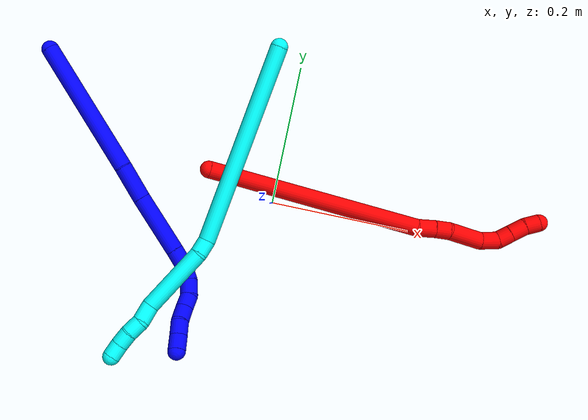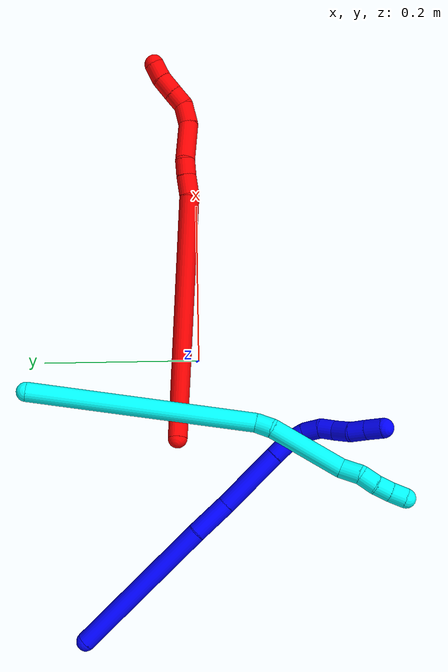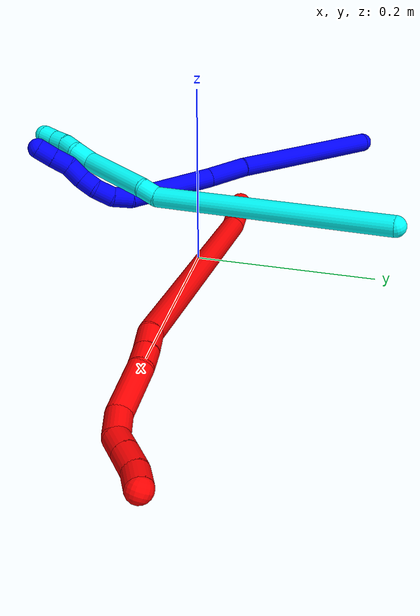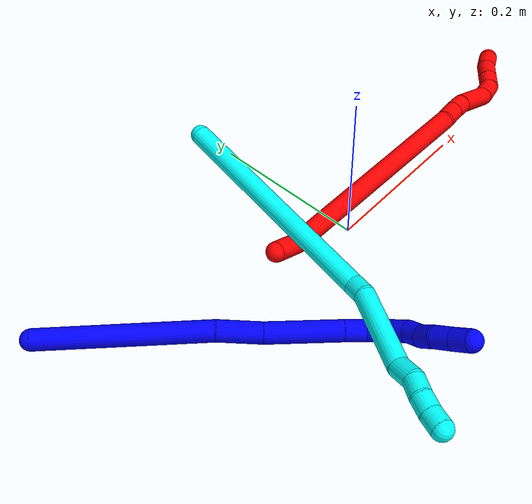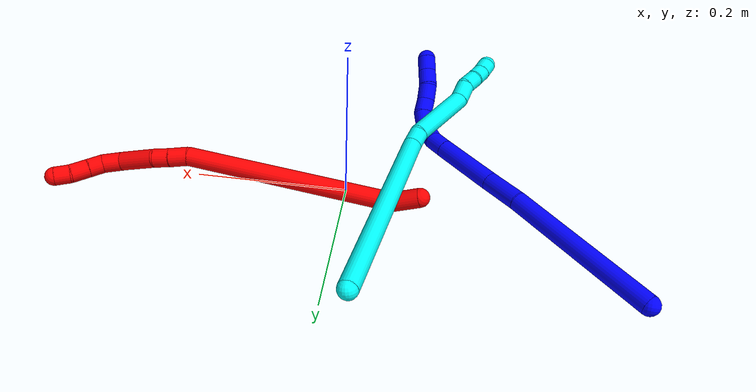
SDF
<sdf version="1.7">
 <world name="default">
  <plugin name="TubeGeneratorPlugin" filename="libtube_generator_plugin.so"/>
  <model name="photoneo_s_sensor">
   <static>1</static>
   <pose>0 0 2 1.57079 1.57079 3.14159</pose>
   <link name="link">
    <inertial><mass>0.1</mass></inertial>
    <sensor name="sensor" type="depth">
     <update_rate>30</update_rate>
     <camera>
      <horizontal_fov>1.22</horizontal_fov>
      <image><width>1920</width><height>1200</height><format>B8G8R8</format></image>
      <clip><near>0.1</near><far>4</far></clip>
      <depth_camera><output>points</output></depth_camera>
     </camera>
     <plugin name="camera_plugin" filename="libgazebo_ros_depth_camera.so">
      <baseline>0.2</baseline>
      <alwaysOn>1</alwaysOn>
      <updateRate>0.0</updateRate>
      <cameraName>camera_ir</cameraName>
      <imageTopicName>/camera/color/image_raw</imageTopicName>
      <cameraInfoTopicName>/camera/color/camera_info</cameraInfoTopicName>
      <depthImageTopicName>/camera/depth/image_raw</depthImageTopicName>
      <depthImageCameraInfoTopicName>/camera/depth/camera_info</depthImageCameraInfoTopicName>
      <pointCloudTopicName>/camera/depth/points</pointCloudTopicName>
      <frameName>fr_optical</frameName>
      <pointCloudCutoff>0.1</pointCloudCutoff>
      <pointCloudCutoffMax>2.0</pointCloudCutoffMax>
      <distortionK1>0</distortionK1>
      <distortionK2>0</distortionK2>
      <distortionK3>0</distortionK3>
      <distortionT1>0</distortionT1>
      <distortionT2>0</distortionT2>
      <CxPrime>0</CxPrime>
      <Cx>0</Cx>
      <Cy>0</Cy>
      <focalLength>0</focalLength>
      <hackBaseline>0</hackBaseline>
     </plugin>
    </sensor>
   </link>
  </model>
  <gravity>0 0 -9.8</gravity>
  <magnetic_field>6e-06 2.3e-05 -4.2e-05</magnetic_field>
  <atmosphere type="adiabatic"/>
  <physics name="default_physics" default="0" type="ode">
   <max_step_size>0.003</max_step_size>
   <real_time_factor>1</real_time_factor>
   <real_time_update_rate>1000</real_time_update_rate>
   <max_contacts>10000</max_contacts>
   <ode>
    <solver>
     <type>quick</type>
     <iters>100</iters>
     <sor>1.3</sor>
     <use_dynamic_moi_rescaling>0</use_dynamic_moi_rescaling>
    </solver>
    <constraints>
     <contact_max_correcting_vel>0</contact_max_correcting_vel>
     <contact_surface_layer>0.001</contact_surface_layer>
     <cfm>0</cfm>
     <erp>0.2</erp>
    </constraints>
   </ode>
  </physics>
  <scene><ambient>0.4 0.4 0.4 1</ambient><background>0.7 0.7 0.7 1</background><shadows>0</shadows></scene>
  <audio><device>default</device></audio>
  <spherical_coordinates>
   <surface_model>EARTH_WGS84</surface_model>
   <latitude_deg>0</latitude_deg>
   <longitude_deg>0</longitude_deg>
   <elevation>0</elevation>
   <heading_deg>0</heading_deg>
  </spherical_coordinates>
  <model name="bin">
   <static>1</static>
   <link name="bottom">
    <collision name="collision-bottom">
     <pose>0 0 -0.01 0 -0 0</pose>
     <geometry><box><size>0.8 0.6 0.02</size></box></geometry>
     <surface>
      <friction><ode><mu>100</mu><mu2>100</mu2></ode></friction>
      <contact><collide_bitmask>65535</collide_bitmask></contact>
     </surface>
    </collision>
   </link>
   <link name="west_wall">
    <collision name="collision-west_wall">
     <pose>-0.41 0 0.1 0 -0 0</pose>
     <geometry><box><size>0.02 0.6 0.2</size></box></geometry>
     <surface>
      <friction><ode><mu>100</mu><mu2>100</mu2></ode></friction>
      <contact><collide_bitmask>65535</collide_bitmask></contact>
     </surface>
    </collision>
   </link>
   <link name="east_wall">
    <collision name="collision-east_wall">
     <pose>0.41 0 0.1 0 -0 0</pose>
     <geometry><box><size>0.02 0.6 0.2</size></box></geometry>
     <surface>
      <friction><ode><mu>100</mu><mu2>100</mu2></ode></friction>
      <contact><collide_bitmask>65535</collide_bitmask></contact>
     </surface>
    </collision>
   </link>
   <link name="south_wall">
    <collision name="collision-south_wall">
     <pose>0 -0.31 0.1 0 -0 0</pose>
     <geometry><box><size>0.8 0.02 0.2</size></box></geometry>
     <surface>
      <friction><ode><mu>100</mu><mu2>100</mu2></ode></friction>
      <contact><collide_bitmask>65535</collide_bitmask></contact>
     </surface>
    </collision>
   </link>
   <link name="north_wall">
    <collision name="collision-north_wall">
     <pose>0 0.31 0.1 0 -0 0</pose>
     <geometry><box><size>0.8 0.02 0.2</size></box></geometry>
     <surface>
      <friction><ode><mu>100</mu><mu2>100</mu2></ode></friction>
      <contact><collide_bitmask>65535</collide_bitmask></contact>
     </surface>
    </collision>
   </link>
  </model>
  <model name="1">
   <static>0</static>
   <link name="1">
    <collision name="collision-cylinder-e_1_1_4">
     <pose>0.087825 -0.029798 -0.037935 2.47576 1.06852 2.0838</pose>
     <geometry><cylinder><radius>0.0125</radius><length>0.200402</length></cylinder></geometry>
     <surface>
      <friction><ode><mu>1.16</mu><mu2>1.16</mu2><slip1>0</slip1><slip2>0</slip2></ode></friction>
      <contact><ode><kp>1e+06</kp><kd>1</kd><max_vel>0</max_vel><min_depth>0.001</min_depth></ode></contact>
     </surface>
    </collision>
    <visual name="visual-cylinder-e_1_1_4">
     <pose>0.087825 -0.029798 -0.037935 2.47576 1.06852 2.0838</pose>
     <geometry><cylinder><radius>0.0125</radius><length>0.200402</length></cylinder></geometry>
     <material><ambient>0 0 1 1</ambient></material>
    </visual>
    <collision name="collision-cylinder-e_2_4_5">
     <pose>0.199626 -0.065324 -0.083619 2.50491 1.18866 2.23422</pose>
     <geometry><cylinder><radius>0.0125</radius><length>0.05168</length></cylinder></geometry>
     <surface>
      <friction><ode><mu>1.16</mu><mu2>1.16</mu2><slip1>0</slip1><slip2>0</slip2></ode></friction>
      <contact><ode><kp>1e+06</kp><kd>1</kd><max_vel>0</max_vel><min_depth>0.001</min_depth></ode></contact>
     </surface>
    </collision>
    <visual name="visual-cylinder-e_2_4_5">
     <pose>0.199626 -0.065324 -0.083619 2.50491 1.18866 2.23422</pose>
     <geometry><cylinder><radius>0.0125</radius><length>0.05168</length></cylinder></geometry>
     <material><ambient>0 0 1 1</ambient></material>
    </visual>
    <collision name="collision-cylinder-e_3_5_6">
     <pose>0.26317 -0.083754 -0.10629 2.43647 1.11094 2.07136</pose>
     <geometry><cylinder><radius>0.0125</radius><length>0.088308</length></cylinder></geometry>
     <surface>
      <friction><ode><mu>1.16</mu><mu2>1.16</mu2><slip1>0</slip1><slip2>0</slip2></ode></friction>
      <contact><ode><kp>1e+06</kp><kd>1</kd><max_vel>0</max_vel><min_depth>0.001</min_depth></ode></contact>
     </surface>
    </collision>
    <visual name="visual-cylinder-e_3_5_6">
     <pose>0.26317 -0.083754 -0.10629 2.43647 1.11094 2.07136</pose>
     <geometry><cylinder><radius>0.0125</radius><length>0.088308</length></cylinder></geometry>
     <material><ambient>0 0 1 1</ambient></material>
    </visual>
    <collision name="collision-cylinder-e_4_6_7">
     <pose>0.314234 -0.099742 -0.125581 2.49639 1.12695 2.1683</pose>
     <geometry><cylinder><radius>0.0125</radius><length>0.025463</length></cylinder></geometry>
     <surface>
      <friction><ode><mu>1.16</mu><mu2>1.16</mu2><slip1>0</slip1><slip2>0</slip2></ode></friction>
      <contact><ode><kp>1e+06</kp><kd>1</kd><max_vel>0</max_vel><min_depth>0.001</min_depth></ode></contact>
     </surface>
    </collision>
    <visual name="visual-cylinder-e_4_6_7">
     <pose>0.314234 -0.099742 -0.125581 2.49639 1.12695 2.1683</pose>
     <geometry><cylinder><radius>0.0125</radius><length>0.025463</length></cylinder></geometry>
     <material><ambient>0 0 1 1</ambient></material>
    </visual>
    <collision name="collision-cylinder-e_5_7_8">
     <pose>0.335265 -0.105195 -0.137528 2.86332 0.879927 2.56327</pose>
     <geometry><cylinder><radius>0.0125</radius><length>0.024738</length></cylinder></geometry>
     <surface>
      <friction><ode><mu>1.16</mu><mu2>1.16</mu2><slip1>0</slip1><slip2>0</slip2></ode></friction>
      <contact><ode><kp>1e+06</kp><kd>1</kd><max_vel>0</max_vel><min_depth>0.001</min_depth></ode></contact>
     </surface>
    </collision>
    <visual name="visual-cylinder-e_5_7_8">
     <pose>0.335265 -0.105195 -0.137528 2.86332 0.879927 2.56327</pose>
     <geometry><cylinder><radius>0.0125</radius><length>0.024738</length></cylinder></geometry>
     <material><ambient>0 0 1 1</ambient></material>
    </visual>
    <collision name="collision-cylinder-e_6_8_9">
     <pose>0.350655 -0.107822 -0.155052 3.09519 0.531726 2.97157</pose>
     <geometry><cylinder><radius>0.0125</radius><length>0.023102</length></cylinder></geometry>
     <surface>
      <friction><ode><mu>1.16</mu><mu2>1.16</mu2><slip1>0</slip1><slip2>0</slip2></ode></friction>
      <contact><ode><kp>1e+06</kp><kd>1</kd><max_vel>0</max_vel><min_depth>0.001</min_depth></ode></contact>
     </surface>
    </collision>
    <visual name="visual-cylinder-e_6_8_9">
     <pose>0.350655 -0.107822 -0.155052 3.09519 0.531726 2.97157</pose>
     <geometry><cylinder><radius>0.0125</radius><length>0.023102</length></cylinder></geometry>
     <material><ambient>0 0 1 1</ambient></material>
    </visual>
    <collision name="collision-cylinder-e_7_9_10">
     <pose>0.359938 -0.10558 -0.17408 -2.85228 0.347005 -1.75468</pose>
     <geometry><cylinder><radius>0.0125</radius><length>0.020154</length></cylinder></geometry>
     <surface>
      <friction><ode><mu>1.16</mu><mu2>1.16</mu2><slip1>0</slip1><slip2>0</slip2></ode></friction>
      <contact><ode><kp>1e+06</kp><kd>1</kd><max_vel>0</max_vel><min_depth>0.001</min_depth></ode></contact>
     </surface>
    </collision>
    <visual name="visual-cylinder-e_7_9_10">
     <pose>0.359938 -0.10558 -0.17408 -2.85228 0.347005 -1.75468</pose>
     <geometry><cylinder><radius>0.0125</radius><length>0.020154</length></cylinder></geometry>
     <material><ambient>0 0 1 1</ambient></material>
    </visual>
    <collision name="collision-cylinder-e_8_10_11">
     <pose>0.36562 -0.101954 -0.194284 -3.0588 0.199339 -2.3562</pose>
     <geometry><cylinder><radius>0.0125</radius><length>0.022772</length></cylinder></geometry>
     <surface>
      <friction><ode><mu>1.16</mu><mu2>1.16</mu2><slip1>0</slip1><slip2>0</slip2></ode></friction>
      <contact><ode><kp>1e+06</kp><kd>1</kd><max_vel>0</max_vel><min_depth>0.001</min_depth></ode></contact>
     </surface>
    </collision>
    <visual name="visual-cylinder-e_8_10_11">
     <pose>0.36562 -0.101954 -0.194284 -3.0588 0.199339 -2.3562</pose>
     <geometry><cylinder><radius>0.0125</radius><length>0.022772</length></cylinder></geometry>
     <material><ambient>0 0 1 1</ambient></material>
    </visual>
    <collision name="collision-cylinder-e_9_11_12">
     <pose>0.373048 -0.100506 -0.214878 -3.08622 0.499256 -2.92518</pose>
     <geometry><cylinder><radius>0.0125</radius><length>0.021609</length></cylinder></geometry>
     <surface>
      <friction><ode><mu>1.16</mu><mu2>1.16</mu2><slip1>0</slip1><slip2>0</slip2></ode></friction>
      <contact><ode><kp>1e+06</kp><kd>1</kd><max_vel>0</max_vel><min_depth>0.001</min_depth></ode></contact>
     </surface>
    </collision>
    <visual name="visual-cylinder-e_9_11_12">
     <pose>0.373048 -0.100506 -0.214878 -3.08622 0.499256 -2.92518</pose>
     <geometry><cylinder><radius>0.0125</radius><length>0.021609</length></cylinder></geometry>
     <material><ambient>0 0 1 1</ambient></material>
    </visual>
    <collision name="collision-cylinder-e_10_12_2">
     <pose>0.382936 -0.099537 -0.234151 -3.09638 0.448017 -2.94376</pose>
     <geometry><cylinder><radius>0.0125</radius><length>0.021772</length></cylinder></geometry>
     <surface>
      <friction><ode><mu>1.16</mu><mu2>1.16</mu2><slip1>0</slip1><slip2>0</slip2></ode></friction>
      <contact><ode><kp>1e+06</kp><kd>1</kd><max_vel>0</max_vel><min_depth>0.001</min_depth></ode></contact>
     </surface>
    </collision>
    <visual name="visual-cylinder-e_10_12_2">
     <pose>0.382936 -0.099537 -0.234151 -3.09638 0.448017 -2.94376</pose>
     <geometry><cylinder><radius>0.0125</radius><length>0.021772</length></cylinder></geometry>
     <material><ambient>0 0 1 1</ambient></material>
    </visual>
    <collision name="collision-sphere-2">
     <pose>0.387652 -0.099094 -0.243952 0 -0 0</pose>
     <geometry><sphere><radius>0.0125</radius></sphere></geometry>
     <surface>
      <friction><ode><mu>1.16</mu><mu2>1.16</mu2><slip1>0</slip1><slip2>0</slip2></ode></friction>
      <contact><ode><kp>1e+06</kp><kd>1</kd><max_vel>0</max_vel><min_depth>0.001</min_depth></ode></contact>
     </surface>
    </collision>
    <visual name="visual-sphere-2">
     <pose>0.387652 -0.099094 -0.243952 0 -0 0</pose>
     <geometry><sphere><radius>0.0125</radius></sphere></geometry>
     <material><ambient>0 0 1 1</ambient></material>
    </visual>
    <collision name="collision-sphere-12">
     <pose>0.378221 -0.099981 -0.224349 0 -0 0</pose>
     <geometry><sphere><radius>0.0125</radius></sphere></geometry>
     <surface>
      <friction><ode><mu>1.16</mu><mu2>1.16</mu2><slip1>0</slip1><slip2>0</slip2></ode></friction>
      <contact><ode><kp>1e+06</kp><kd>1</kd><max_vel>0</max_vel><min_depth>0.001</min_depth></ode></contact>
     </surface>
    </collision>
    <visual name="visual-sphere-12">
     <pose>0.378221 -0.099981 -0.224349 0 -0 0</pose>
     <geometry><sphere><radius>0.0125</radius></sphere></geometry>
     <material><ambient>0 0 1 1</ambient></material>
    </visual>
    <collision name="collision-sphere-11">
     <pose>0.367875 -0.101031 -0.205407 0 -0 0</pose>
     <geometry><sphere><radius>0.0125</radius></sphere></geometry>
     <surface>
      <friction><ode><mu>1.16</mu><mu2>1.16</mu2><slip1>0</slip1><slip2>0</slip2></ode></friction>
      <contact><ode><kp>1e+06</kp><kd>1</kd><max_vel>0</max_vel><min_depth>0.001</min_depth></ode></contact>
     </surface>
    </collision>
    <visual name="visual-sphere-11">
     <pose>0.367875 -0.101031 -0.205407 0 -0 0</pose>
     <geometry><sphere><radius>0.0125</radius></sphere></geometry>
     <material><ambient>0 0 1 1</ambient></material>
    </visual>
    <collision name="collision-sphere-10">
     <pose>0.363365 -0.102877 -0.183162 0 -0 0</pose>
     <geometry><sphere><radius>0.0125</radius></sphere></geometry>
     <surface>
      <friction><ode><mu>1.16</mu><mu2>1.16</mu2><slip1>0</slip1><slip2>0</slip2></ode></friction>
      <contact><ode><kp>1e+06</kp><kd>1</kd><max_vel>0</max_vel><min_depth>0.001</min_depth></ode></contact>
     </surface>
    </collision>
    <visual name="visual-sphere-10">
     <pose>0.363365 -0.102877 -0.183162 0 -0 0</pose>
     <geometry><sphere><radius>0.0125</radius></sphere></geometry>
     <material><ambient>0 0 1 1</ambient></material>
    </visual>
    <collision name="collision-sphere-9">
     <pose>0.356511 -0.108284 -0.164997 0 -0 0</pose>
     <geometry><sphere><radius>0.0125</radius></sphere></geometry>
     <surface>
      <friction><ode><mu>1.16</mu><mu2>1.16</mu2><slip1>0</slip1><slip2>0</slip2></ode></friction>
      <contact><ode><kp>1e+06</kp><kd>1</kd><max_vel>0</max_vel><min_depth>0.001</min_depth></ode></contact>
     </surface>
    </collision>
    <visual name="visual-sphere-9">
     <pose>0.356511 -0.108284 -0.164997 0 -0 0</pose>
     <geometry><sphere><radius>0.0125</radius></sphere></geometry>
     <material><ambient>0 0 1 1</ambient></material>
    </visual>
    <collision name="collision-sphere-4">
     <pose>0.17565 -0.059595 -0.075871 0 -0 0</pose>
     <geometry><sphere><radius>0.0125</radius></sphere></geometry>
     <surface>
      <friction><ode><mu>1.16</mu><mu2>1.16</mu2><slip1>0</slip1><slip2>0</slip2></ode></friction>
      <contact><ode><kp>1e+06</kp><kd>1</kd><max_vel>0</max_vel><min_depth>0.001</min_depth></ode></contact>
     </surface>
    </collision>
    <visual name="visual-sphere-4">
     <pose>0.17565 -0.059595 -0.075871 0 -0 0</pose>
     <geometry><sphere><radius>0.0125</radius></sphere></geometry>
     <material><ambient>0 0 1 1</ambient></material>
    </visual>
    <collision name="collision-sphere-1">
     <geometry><sphere><radius>0.0125</radius></sphere></geometry>
     <surface>
      <friction><ode><mu>1.16</mu><mu2>1.16</mu2><slip1>0</slip1><slip2>0</slip2></ode></friction>
      <contact><ode><kp>1e+06</kp><kd>1</kd><max_vel>0</max_vel><min_depth>0.001</min_depth></ode></contact>
     </surface>
    </collision>
    <visual name="visual-sphere-1">
     <geometry><sphere><radius>0.0125</radius></sphere></geometry>
     <material><ambient>0 0 1 1</ambient></material>
    </visual>
    <collision name="collision-sphere-8">
     <pose>0.344798 -0.10736 -0.145106 0 -0 0</pose>
     <geometry><sphere><radius>0.0125</radius></sphere></geometry>
     <surface>
      <friction><ode><mu>1.16</mu><mu2>1.16</mu2><slip1>0</slip1><slip2>0</slip2></ode></friction>
      <contact><ode><kp>1e+06</kp><kd>1</kd><max_vel>0</max_vel><min_depth>0.001</min_depth></ode></contact>
     </surface>
    </collision>
    <visual name="visual-sphere-8">
     <pose>0.344798 -0.10736 -0.145106 0 -0 0</pose>
     <geometry><sphere><radius>0.0125</radius></sphere></geometry>
     <material><ambient>0 0 1 1</ambient></material>
    </visual>
    <collision name="collision-sphere-5">
     <pose>0.223603 -0.071053 -0.091367 0 -0 0</pose>
     <geometry><sphere><radius>0.0125</radius></sphere></geometry>
     <surface>
      <friction><ode><mu>1.16</mu><mu2>1.16</mu2><slip1>0</slip1><slip2>0</slip2></ode></friction>
      <contact><ode><kp>1e+06</kp><kd>1</kd><max_vel>0</max_vel><min_depth>0.001</min_depth></ode></contact>
     </surface>
    </collision>
    <visual name="visual-sphere-5">
     <pose>0.223603 -0.071053 -0.091367 0 -0 0</pose>
     <geometry><sphere><radius>0.0125</radius></sphere></geometry>
     <material><ambient>0 0 1 1</ambient></material>
    </visual>
    <collision name="collision-sphere-6">
     <pose>0.302737 -0.096454 -0.121213 0 -0 0</pose>
     <geometry><sphere><radius>0.0125</radius></sphere></geometry>
     <surface>
      <friction><ode><mu>1.16</mu><mu2>1.16</mu2><slip1>0</slip1><slip2>0</slip2></ode></friction>
      <contact><ode><kp>1e+06</kp><kd>1</kd><max_vel>0</max_vel><min_depth>0.001</min_depth></ode></contact>
     </surface>
    </collision>
    <visual name="visual-sphere-6">
     <pose>0.302737 -0.096454 -0.121213 0 -0 0</pose>
     <geometry><sphere><radius>0.0125</radius></sphere></geometry>
     <material><ambient>0 0 1 1</ambient></material>
    </visual>
    <collision name="collision-sphere-7">
     <pose>0.325732 -0.10303 -0.129949 0 -0 0</pose>
     <geometry><sphere><radius>0.0125</radius></sphere></geometry>
     <surface>
      <friction><ode><mu>1.16</mu><mu2>1.16</mu2><slip1>0</slip1><slip2>0</slip2></ode></friction>
      <contact><ode><kp>1e+06</kp><kd>1</kd><max_vel>0</max_vel><min_depth>0.001</min_depth></ode></contact>
     </surface>
    </collision>
    <visual name="visual-sphere-7">
     <pose>0.325732 -0.10303 -0.129949 0 -0 0</pose>
     <geometry><sphere><radius>0.0125</radius></sphere></geometry>
     <material><ambient>0 0 1 1</ambient></material>
    </visual>
    <inertial>
     <pose>0.215063 -0.06633 -0.098331 0 -0 0</pose>
     <mass>0.5</mass>
     <inertia>
      <ixx>0.000157</ixx>
      <ixy>0</ixy>
      <ixz>0</ixz>
      <iyy>0.000962</iyy>
      <iyz>0</iyz>
      <izz>-0.000465</izz>
     </inertia>
    </inertial>
   </link>
   <pose>-0.358401 0.150763 0.012388 -2.73745 0.45734 -0.929824</pose>
  </model>
  <model name="2">
   <static>0</static>
   <link name="2">
    <collision name="collision-cylinder-e_1_1_4">
     <pose>0.007133 -0.007308 0.015372 0.44375 0.396857 0.090658</pose>
     <geometry><cylinder><radius>0.0125</radius><length>0.036911</length></cylinder></geometry>
     <surface>
      <friction><ode><mu>1.16</mu><mu2>1.16</mu2><slip1>0</slip1><slip2>0</slip2></ode></friction>
      <contact><ode><kp>1e+06</kp><kd>1</kd><max_vel>0</max_vel><min_depth>0.001</min_depth></ode></contact>
     </surface>
    </collision>
    <visual name="visual-cylinder-e_1_1_4">
     <pose>0.007133 -0.007308 0.015372 0.44375 0.396857 0.090658</pose>
     <geometry><cylinder><radius>0.0125</radius><length>0.036911</length></cylinder></geometry>
     <material><ambient>1 0 0 1</ambient></material>
    </visual>
    <collision name="collision-cylinder-e_2_4_5">
     <pose>0.10994 -0.083446 0.100754 0.776911 0.77248 0.329834</pose>
     <geometry><cylinder><radius>0.0125</radius><length>0.27417</length></cylinder></geometry>
     <surface>
      <friction><ode><mu>1.16</mu><mu2>1.16</mu2><slip1>0</slip1><slip2>0</slip2></ode></friction>
      <contact><ode><kp>1e+06</kp><kd>1</kd><max_vel>0</max_vel><min_depth>0.001</min_depth></ode></contact>
     </surface>
    </collision>
    <visual name="visual-cylinder-e_2_4_5">
     <pose>0.10994 -0.083446 0.100754 0.776911 0.77248 0.329834</pose>
     <geometry><cylinder><radius>0.0125</radius><length>0.27417</length></cylinder></geometry>
     <material><ambient>1 0 0 1</ambient></material>
    </visual>
    <collision name="collision-cylinder-e_3_5_6">
     <pose>0.211427 -0.160079 0.178638 0.780786 0.482973 0.202016</pose>
     <geometry><cylinder><radius>0.0125</radius><length>0.025036</length></cylinder></geometry>
     <surface>
      <friction><ode><mu>1.16</mu><mu2>1.16</mu2><slip1>0</slip1><slip2>0</slip2></ode></friction>
      <contact><ode><kp>1e+06</kp><kd>1</kd><max_vel>0</max_vel><min_depth>0.001</min_depth></ode></contact>
     </surface>
    </collision>
    <visual name="visual-cylinder-e_3_5_6">
     <pose>0.211427 -0.160079 0.178638 0.780786 0.482973 0.202016</pose>
     <geometry><cylinder><radius>0.0125</radius><length>0.025036</length></cylinder></geometry>
     <material><ambient>1 0 0 1</ambient></material>
    </visual>
    <collision name="collision-cylinder-e_4_6_7">
     <pose>0.222633 -0.173987 0.193426 0.723371 0.529054 0.204246</pose>
     <geometry><cylinder><radius>0.0125</radius><length>0.021366</length></cylinder></geometry>
     <surface>
      <friction><ode><mu>1.16</mu><mu2>1.16</mu2><slip1>0</slip1><slip2>0</slip2></ode></friction>
      <contact><ode><kp>1e+06</kp><kd>1</kd><max_vel>0</max_vel><min_depth>0.001</min_depth></ode></contact>
     </surface>
    </collision>
    <visual name="visual-cylinder-e_4_6_7">
     <pose>0.222633 -0.173987 0.193426 0.723371 0.529054 0.204246</pose>
     <geometry><cylinder><radius>0.0125</radius><length>0.021366</length></cylinder></geometry>
     <material><ambient>1 0 0 1</ambient></material>
    </visual>
    <collision name="collision-cylinder-e_5_7_8">
     <pose>0.239956 -0.190026 0.220666 0.454601 0.485292 0.114378</pose>
     <geometry><cylinder><radius>0.0125</radius><length>0.051157</length></cylinder></geometry>
     <surface>
      <friction><ode><mu>1.16</mu><mu2>1.16</mu2><slip1>0</slip1><slip2>0</slip2></ode></friction>
      <contact><ode><kp>1e+06</kp><kd>1</kd><max_vel>0</max_vel><min_depth>0.001</min_depth></ode></contact>
     </surface>
    </collision>
    <visual name="visual-cylinder-e_5_7_8">
     <pose>0.239956 -0.190026 0.220666 0.454601 0.485292 0.114378</pose>
     <geometry><cylinder><radius>0.0125</radius><length>0.051157</length></cylinder></geometry>
     <material><ambient>1 0 0 1</ambient></material>
    </visual>
    <collision name="collision-cylinder-e_6_8_9">
     <pose>0.25731 -0.209084 0.248933 0.854647 0.42149 0.194221</pose>
     <geometry><cylinder><radius>0.0125</radius><length>0.026508</length></cylinder></geometry>
     <surface>
      <friction><ode><mu>1.16</mu><mu2>1.16</mu2><slip1>0</slip1><slip2>0</slip2></ode></friction>
      <contact><ode><kp>1e+06</kp><kd>1</kd><max_vel>0</max_vel><min_depth>0.001</min_depth></ode></contact>
     </surface>
    </collision>
    <visual name="visual-cylinder-e_6_8_9">
     <pose>0.25731 -0.209084 0.248933 0.854647 0.42149 0.194221</pose>
     <geometry><cylinder><radius>0.0125</radius><length>0.026508</length></cylinder></geometry>
     <material><ambient>1 0 0 1</ambient></material>
    </visual>
    <collision name="collision-cylinder-e_7_9_10">
     <pose>0.264128 -0.227809 0.260188 1.23832 0.136516 0.097361</pose>
     <geometry><cylinder><radius>0.0125</radius><length>0.020509</length></cylinder></geometry>
     <surface>
      <friction><ode><mu>1.16</mu><mu2>1.16</mu2><slip1>0</slip1><slip2>0</slip2></ode></friction>
      <contact><ode><kp>1e+06</kp><kd>1</kd><max_vel>0</max_vel><min_depth>0.001</min_depth></ode></contact>
     </surface>
    </collision>
    <visual name="visual-cylinder-e_7_9_10">
     <pose>0.264128 -0.227809 0.260188 1.23832 0.136516 0.097361</pose>
     <geometry><cylinder><radius>0.0125</radius><length>0.020509</length></cylinder></geometry>
     <material><ambient>1 0 0 1</ambient></material>
    </visual>
    <collision name="collision-cylinder-e_8_10_11">
     <pose>0.267199 -0.248513 0.267446 1.2296 0.141245 0.099815</pose>
     <geometry><cylinder><radius>0.0125</radius><length>0.023797</length></cylinder></geometry>
     <surface>
      <friction><ode><mu>1.16</mu><mu2>1.16</mu2><slip1>0</slip1><slip2>0</slip2></ode></friction>
      <contact><ode><kp>1e+06</kp><kd>1</kd><max_vel>0</max_vel><min_depth>0.001</min_depth></ode></contact>
     </surface>
    </collision>
    <visual name="visual-cylinder-e_8_10_11">
     <pose>0.267199 -0.248513 0.267446 1.2296 0.141245 0.099815</pose>
     <geometry><cylinder><radius>0.0125</radius><length>0.023797</length></cylinder></geometry>
     <material><ambient>1 0 0 1</ambient></material>
    </visual>
    <collision name="collision-cylinder-e_9_11_2">
     <pose>0.272289 -0.268371 0.275532 1.12875 0.338915 0.21579</pose>
     <geometry><cylinder><radius>0.0125</radius><length>0.020547</length></cylinder></geometry>
     <surface>
      <friction><ode><mu>1.16</mu><mu2>1.16</mu2><slip1>0</slip1><slip2>0</slip2></ode></friction>
      <contact><ode><kp>1e+06</kp><kd>1</kd><max_vel>0</max_vel><min_depth>0.001</min_depth></ode></contact>
     </surface>
    </collision>
    <visual name="visual-cylinder-e_9_11_2">
     <pose>0.272289 -0.268371 0.275532 1.12875 0.338915 0.21579</pose>
     <geometry><cylinder><radius>0.0125</radius><length>0.020547</length></cylinder></geometry>
     <material><ambient>1 0 0 1</ambient></material>
    </visual>
    <collision name="collision-sphere-2">
     <pose>0.275705 -0.277129 0.279677 0 -0 0</pose>
     <geometry><sphere><radius>0.0125</radius></sphere></geometry>
     <surface>
      <friction><ode><mu>1.16</mu><mu2>1.16</mu2><slip1>0</slip1><slip2>0</slip2></ode></friction>
      <contact><ode><kp>1e+06</kp><kd>1</kd><max_vel>0</max_vel><min_depth>0.001</min_depth></ode></contact>
     </surface>
    </collision>
    <visual name="visual-sphere-2">
     <pose>0.275705 -0.277129 0.279677 0 -0 0</pose>
     <geometry><sphere><radius>0.0125</radius></sphere></geometry>
     <material><ambient>1 0 0 1</ambient></material>
    </visual>
    <collision name="collision-sphere-11">
     <pose>0.268874 -0.259614 0.271388 0 -0 0</pose>
     <geometry><sphere><radius>0.0125</radius></sphere></geometry>
     <surface>
      <friction><ode><mu>1.16</mu><mu2>1.16</mu2><slip1>0</slip1><slip2>0</slip2></ode></friction>
      <contact><ode><kp>1e+06</kp><kd>1</kd><max_vel>0</max_vel><min_depth>0.001</min_depth></ode></contact>
     </surface>
    </collision>
    <visual name="visual-sphere-11">
     <pose>0.268874 -0.259614 0.271388 0 -0 0</pose>
     <geometry><sphere><radius>0.0125</radius></sphere></geometry>
     <material><ambient>1 0 0 1</ambient></material>
    </visual>
    <collision name="collision-sphere-10">
     <pose>0.265523 -0.237412 0.263504 0 -0 0</pose>
     <geometry><sphere><radius>0.0125</radius></sphere></geometry>
     <surface>
      <friction><ode><mu>1.16</mu><mu2>1.16</mu2><slip1>0</slip1><slip2>0</slip2></ode></friction>
      <contact><ode><kp>1e+06</kp><kd>1</kd><max_vel>0</max_vel><min_depth>0.001</min_depth></ode></contact>
     </surface>
    </collision>
    <visual name="visual-sphere-10">
     <pose>0.265523 -0.237412 0.263504 0 -0 0</pose>
     <geometry><sphere><radius>0.0125</radius></sphere></geometry>
     <material><ambient>1 0 0 1</ambient></material>
    </visual>
    <collision name="collision-sphere-9">
     <pose>0.262732 -0.218206 0.256873 0 -0 0</pose>
     <geometry><sphere><radius>0.0125</radius></sphere></geometry>
     <surface>
      <friction><ode><mu>1.16</mu><mu2>1.16</mu2><slip1>0</slip1><slip2>0</slip2></ode></friction>
      <contact><ode><kp>1e+06</kp><kd>1</kd><max_vel>0</max_vel><min_depth>0.001</min_depth></ode></contact>
     </surface>
    </collision>
    <visual name="visual-sphere-9">
     <pose>0.262732 -0.218206 0.256873 0 -0 0</pose>
     <geometry><sphere><radius>0.0125</radius></sphere></geometry>
     <material><ambient>1 0 0 1</ambient></material>
    </visual>
    <collision name="collision-sphere-4">
     <pose>0.014267 -0.014615 0.030745 0 -0 0</pose>
     <geometry><sphere><radius>0.0125</radius></sphere></geometry>
     <surface>
      <friction><ode><mu>1.16</mu><mu2>1.16</mu2><slip1>0</slip1><slip2>0</slip2></ode></friction>
      <contact><ode><kp>1e+06</kp><kd>1</kd><max_vel>0</max_vel><min_depth>0.001</min_depth></ode></contact>
     </surface>
    </collision>
    <visual name="visual-sphere-4">
     <pose>0.014267 -0.014615 0.030745 0 -0 0</pose>
     <geometry><sphere><radius>0.0125</radius></sphere></geometry>
     <material><ambient>1 0 0 1</ambient></material>
    </visual>
    <collision name="collision-sphere-1">
     <geometry><sphere><radius>0.0125</radius></sphere></geometry>
     <surface>
      <friction><ode><mu>1.16</mu><mu2>1.16</mu2><slip1>0</slip1><slip2>0</slip2></ode></friction>
      <contact><ode><kp>1e+06</kp><kd>1</kd><max_vel>0</max_vel><min_depth>0.001</min_depth></ode></contact>
     </surface>
    </collision>
    <visual name="visual-sphere-1">
     <geometry><sphere><radius>0.0125</radius></sphere></geometry>
     <material><ambient>1 0 0 1</ambient></material>
    </visual>
    <collision name="collision-sphere-8">
     <pose>0.251887 -0.199961 0.240993 0 -0 0</pose>
     <geometry><sphere><radius>0.0125</radius></sphere></geometry>
     <surface>
      <friction><ode><mu>1.16</mu><mu2>1.16</mu2><slip1>0</slip1><slip2>0</slip2></ode></friction>
      <contact><ode><kp>1e+06</kp><kd>1</kd><max_vel>0</max_vel><min_depth>0.001</min_depth></ode></contact>
     </surface>
    </collision>
    <visual name="visual-sphere-8">
     <pose>0.251887 -0.199961 0.240993 0 -0 0</pose>
     <geometry><sphere><radius>0.0125</radius></sphere></geometry>
     <material><ambient>1 0 0 1</ambient></material>
    </visual>
    <collision name="collision-sphere-5">
     <pose>0.205614 -0.152276 0.170763 0 -0 0</pose>
     <geometry><sphere><radius>0.0125</radius></sphere></geometry>
     <surface>
      <friction><ode><mu>1.16</mu><mu2>1.16</mu2><slip1>0</slip1><slip2>0</slip2></ode></friction>
      <contact><ode><kp>1e+06</kp><kd>1</kd><max_vel>0</max_vel><min_depth>0.001</min_depth></ode></contact>
     </surface>
    </collision>
    <visual name="visual-sphere-5">
     <pose>0.205614 -0.152276 0.170763 0 -0 0</pose>
     <geometry><sphere><radius>0.0125</radius></sphere></geometry>
     <material><ambient>1 0 0 1</ambient></material>
    </visual>
    <collision name="collision-sphere-6">
     <pose>0.217241 -0.167882 0.186513 0 -0 0</pose>
     <geometry><sphere><radius>0.0125</radius></sphere></geometry>
     <surface>
      <friction><ode><mu>1.16</mu><mu2>1.16</mu2><slip1>0</slip1><slip2>0</slip2></ode></friction>
      <contact><ode><kp>1e+06</kp><kd>1</kd><max_vel>0</max_vel><min_depth>0.001</min_depth></ode></contact>
     </surface>
    </collision>
    <visual name="visual-sphere-6">
     <pose>0.217241 -0.167882 0.186513 0 -0 0</pose>
     <geometry><sphere><radius>0.0125</radius></sphere></geometry>
     <material><ambient>1 0 0 1</ambient></material>
    </visual>
    <collision name="collision-sphere-7">
     <pose>0.228024 -0.180091 0.200339 0 -0 0</pose>
     <geometry><sphere><radius>0.0125</radius></sphere></geometry>
     <surface>
      <friction><ode><mu>1.16</mu><mu2>1.16</mu2><slip1>0</slip1><slip2>0</slip2></ode></friction>
      <contact><ode><kp>1e+06</kp><kd>1</kd><max_vel>0</max_vel><min_depth>0.001</min_depth></ode></contact>
     </surface>
    </collision>
    <visual name="visual-sphere-7">
     <pose>0.228024 -0.180091 0.200339 0 -0 0</pose>
     <geometry><sphere><radius>0.0125</radius></sphere></geometry>
     <material><ambient>1 0 0 1</ambient></material>
    </visual>
    <inertial>
     <pose>0.153844 -0.124474 0.144091 0 -0 0</pose>
     <mass>0.5</mass>
     <inertia>
      <ixx>0.001624</ixx>
      <ixy>0</ixy>
      <ixz>0</ixz>
      <iyy>0.001847</iyy>
      <iyz>0</iyz>
      <izz>-0.000313</izz>
     </inertia>
    </inertial>
   </link>
   <pose>-0.098231 0.028157 0.025024 -2.90887 -0.611953 -0.721882</pose>
  </model>
  <model name="3">
   <static>0</static>
   <link name="3">
    <collision name="collision-cylinder-e_1_1_4">
     <pose>-0.069935 -0.126155 -0.017812 1.71106 -0.502006 -0.574013</pose>
     <geometry><cylinder><radius>0.0125</radius><length>0.290677</length></cylinder></geometry>
     <surface>
      <friction><ode><mu>1.16</mu><mu2>1.16</mu2><slip1>0</slip1><slip2>0</slip2></ode></friction>
      <contact><ode><kp>1e+06</kp><kd>1</kd><max_vel>0</max_vel><min_depth>0.001</min_depth></ode></contact>
     </surface>
    </collision>
    <visual name="visual-cylinder-e_1_1_4">
     <pose>-0.069935 -0.126155 -0.017812 1.71106 -0.502006 -0.574013</pose>
     <geometry><cylinder><radius>0.0125</radius><length>0.290677</length></cylinder></geometry>
     <material><ambient>0.003922 1 0.996078 1</ambient></material>
    </visual>
    <collision name="collision-cylinder-e_2_4_5">
     <pose>-0.14236 -0.262312 -0.040245 2.0036 -0.222362 -0.345638</pose>
     <geometry><cylinder><radius>0.0125</radius><length>0.022592</length></cylinder></geometry>
     <surface>
      <friction><ode><mu>1.16</mu><mu2>1.16</mu2><slip1>0</slip1><slip2>0</slip2></ode></friction>
      <contact><ode><kp>1e+06</kp><kd>1</kd><max_vel>0</max_vel><min_depth>0.001</min_depth></ode></contact>
     </surface>
    </collision>
    <visual name="visual-cylinder-e_2_4_5">
     <pose>-0.14236 -0.262312 -0.040245 2.0036 -0.222362 -0.345638</pose>
     <geometry><cylinder><radius>0.0125</radius><length>0.022592</length></cylinder></geometry>
     <material><ambient>0.003922 1 0.996078 1</ambient></material>
    </visual>
    <collision name="collision-cylinder-e_3_5_6">
     <pose>-0.149837 -0.320835 -0.051862 1.714 -0.10136 -0.11699</pose>
     <geometry><cylinder><radius>0.0125</radius><length>0.098551</length></cylinder></geometry>
     <surface>
      <friction><ode><mu>1.16</mu><mu2>1.16</mu2><slip1>0</slip1><slip2>0</slip2></ode></friction>
      <contact><ode><kp>1e+06</kp><kd>1</kd><max_vel>0</max_vel><min_depth>0.001</min_depth></ode></contact>
     </surface>
    </collision>
    <visual name="visual-cylinder-e_3_5_6">
     <pose>-0.149837 -0.320835 -0.051862 1.714 -0.10136 -0.11699</pose>
     <geometry><cylinder><radius>0.0125</radius><length>0.098551</length></cylinder></geometry>
     <material><ambient>0.003922 1 0.996078 1</ambient></material>
    </visual>
    <collision name="collision-cylinder-e_4_6_7">
     <pose>-0.157707 -0.380463 -0.065326 2.09815 -0.220688 -0.3808</pose>
     <geometry><cylinder><radius>0.0125</radius><length>0.026344</length></cylinder></geometry>
     <surface>
      <friction><ode><mu>1.16</mu><mu2>1.16</mu2><slip1>0</slip1><slip2>0</slip2></ode></friction>
      <contact><ode><kp>1e+06</kp><kd>1</kd><max_vel>0</max_vel><min_depth>0.001</min_depth></ode></contact>
     </surface>
    </collision>
    <visual name="visual-cylinder-e_4_6_7">
     <pose>-0.157707 -0.380463 -0.065326 2.09815 -0.220688 -0.3808</pose>
     <geometry><cylinder><radius>0.0125</radius><length>0.026344</length></cylinder></geometry>
     <material><ambient>0.003922 1 0.996078 1</ambient></material>
    </visual>
    <collision name="collision-cylinder-e_5_7_8">
     <pose>-0.160737 -0.402234 -0.074054 1.77967 -0.013459 -0.01661</pose>
     <geometry><cylinder><radius>0.0125</radius><length>0.021805</length></cylinder></geometry>
     <surface>
      <friction><ode><mu>1.16</mu><mu2>1.16</mu2><slip1>0</slip1><slip2>0</slip2></ode></friction>
      <contact><ode><kp>1e+06</kp><kd>1</kd><max_vel>0</max_vel><min_depth>0.001</min_depth></ode></contact>
     </surface>
    </collision>
    <visual name="visual-cylinder-e_5_7_8">
     <pose>-0.160737 -0.402234 -0.074054 1.77967 -0.013459 -0.01661</pose>
     <geometry><cylinder><radius>0.0125</radius><length>0.021805</length></cylinder></geometry>
     <material><ambient>0.003922 1 0.996078 1</ambient></material>
    </visual>
    <collision name="collision-cylinder-e_6_8_9">
     <pose>-0.162609 -0.422665 -0.077633 1.70491 -0.173262 -0.198057</pose>
     <geometry><cylinder><radius>0.0125</radius><length>0.02001</length></cylinder></geometry>
     <surface>
      <friction><ode><mu>1.16</mu><mu2>1.16</mu2><slip1>0</slip1><slip2>0</slip2></ode></friction>
      <contact><ode><kp>1e+06</kp><kd>1</kd><max_vel>0</max_vel><min_depth>0.001</min_depth></ode></contact>
     </surface>
    </collision>
    <visual name="visual-cylinder-e_6_8_9">
     <pose>-0.162609 -0.422665 -0.077633 1.70491 -0.173262 -0.198057</pose>
     <geometry><cylinder><radius>0.0125</radius><length>0.02001</length></cylinder></geometry>
     <material><ambient>0.003922 1 0.996078 1</ambient></material>
    </visual>
    <collision name="collision-cylinder-e_7_9_2">
     <pose>-0.166556 -0.441868 -0.081447 1.82947 -0.223852 -0.289958</pose>
     <geometry><cylinder><radius>0.0125</radius><length>0.020021</length></cylinder></geometry>
     <surface>
      <friction><ode><mu>1.16</mu><mu2>1.16</mu2><slip1>0</slip1><slip2>0</slip2></ode></friction>
      <contact><ode><kp>1e+06</kp><kd>1</kd><max_vel>0</max_vel><min_depth>0.001</min_depth></ode></contact>
     </surface>
    </collision>
    <visual name="visual-cylinder-e_7_9_2">
     <pose>-0.166556 -0.441868 -0.081447 1.82947 -0.223852 -0.289958</pose>
     <geometry><cylinder><radius>0.0125</radius><length>0.020021</length></cylinder></geometry>
     <material><ambient>0.003922 1 0.996078 1</ambient></material>
    </visual>
    <collision name="collision-sphere-2">
     <pose>-0.168778 -0.451304 -0.083944 0 -0 0</pose>
     <geometry><sphere><radius>0.0125</radius></sphere></geometry>
     <surface>
      <friction><ode><mu>1.16</mu><mu2>1.16</mu2><slip1>0</slip1><slip2>0</slip2></ode></friction>
      <contact><ode><kp>1e+06</kp><kd>1</kd><max_vel>0</max_vel><min_depth>0.001</min_depth></ode></contact>
     </surface>
    </collision>
    <visual name="visual-sphere-2">
     <pose>-0.168778 -0.451304 -0.083944 0 -0 0</pose>
     <geometry><sphere><radius>0.0125</radius></sphere></geometry>
     <material><ambient>0.003922 1 0.996078 1</ambient></material>
    </visual>
    <collision name="collision-sphere-9">
     <pose>-0.164333 -0.432432 -0.078951 0 -0 0</pose>
     <geometry><sphere><radius>0.0125</radius></sphere></geometry>
     <surface>
      <friction><ode><mu>1.16</mu><mu2>1.16</mu2><slip1>0</slip1><slip2>0</slip2></ode></friction>
      <contact><ode><kp>1e+06</kp><kd>1</kd><max_vel>0</max_vel><min_depth>0.001</min_depth></ode></contact>
     </surface>
    </collision>
    <visual name="visual-sphere-9">
     <pose>-0.164333 -0.432432 -0.078951 0 -0 0</pose>
     <geometry><sphere><radius>0.0125</radius></sphere></geometry>
     <material><ambient>0.003922 1 0.996078 1</ambient></material>
    </visual>
    <collision name="collision-sphere-4">
     <pose>-0.139869 -0.25231 -0.035623 0 -0 0</pose>
     <geometry><sphere><radius>0.0125</radius></sphere></geometry>
     <surface>
      <friction><ode><mu>1.16</mu><mu2>1.16</mu2><slip1>0</slip1><slip2>0</slip2></ode></friction>
      <contact><ode><kp>1e+06</kp><kd>1</kd><max_vel>0</max_vel><min_depth>0.001</min_depth></ode></contact>
     </surface>
    </collision>
    <visual name="visual-sphere-4">
     <pose>-0.139869 -0.25231 -0.035623 0 -0 0</pose>
     <geometry><sphere><radius>0.0125</radius></sphere></geometry>
     <material><ambient>0.003922 1 0.996078 1</ambient></material>
    </visual>
    <collision name="collision-sphere-1">
     <geometry><sphere><radius>0.0125</radius></sphere></geometry>
     <surface>
      <friction><ode><mu>1.16</mu><mu2>1.16</mu2><slip1>0</slip1><slip2>0</slip2></ode></friction>
      <contact><ode><kp>1e+06</kp><kd>1</kd><max_vel>0</max_vel><min_depth>0.001</min_depth></ode></contact>
     </surface>
    </collision>
    <visual name="visual-sphere-1">
     <geometry><sphere><radius>0.0125</radius></sphere></geometry>
     <material><ambient>0.003922 1 0.996078 1</ambient></material>
    </visual>
    <collision name="collision-sphere-8">
     <pose>-0.160884 -0.412898 -0.076315 0 -0 0</pose>
     <geometry><sphere><radius>0.0125</radius></sphere></geometry>
     <surface>
      <friction><ode><mu>1.16</mu><mu2>1.16</mu2><slip1>0</slip1><slip2>0</slip2></ode></friction>
      <contact><ode><kp>1e+06</kp><kd>1</kd><max_vel>0</max_vel><min_depth>0.001</min_depth></ode></contact>
     </surface>
    </collision>
    <visual name="visual-sphere-8">
     <pose>-0.160884 -0.412898 -0.076315 0 -0 0</pose>
     <geometry><sphere><radius>0.0125</radius></sphere></geometry>
     <material><ambient>0.003922 1 0.996078 1</ambient></material>
    </visual>
    <collision name="collision-sphere-5">
     <pose>-0.144851 -0.272314 -0.044866 0 -0 0</pose>
     <geometry><sphere><radius>0.0125</radius></sphere></geometry>
     <surface>
      <friction><ode><mu>1.16</mu><mu2>1.16</mu2><slip1>0</slip1><slip2>0</slip2></ode></friction>
      <contact><ode><kp>1e+06</kp><kd>1</kd><max_vel>0</max_vel><min_depth>0.001</min_depth></ode></contact>
     </surface>
    </collision>
    <visual name="visual-sphere-5">
     <pose>-0.144851 -0.272314 -0.044866 0 -0 0</pose>
     <geometry><sphere><radius>0.0125</radius></sphere></geometry>
     <material><ambient>0.003922 1 0.996078 1</ambient></material>
    </visual>
    <collision name="collision-sphere-6">
     <pose>-0.154824 -0.369356 -0.058858 0 -0 0</pose>
     <geometry><sphere><radius>0.0125</radius></sphere></geometry>
     <surface>
      <friction><ode><mu>1.16</mu><mu2>1.16</mu2><slip1>0</slip1><slip2>0</slip2></ode></friction>
      <contact><ode><kp>1e+06</kp><kd>1</kd><max_vel>0</max_vel><min_depth>0.001</min_depth></ode></contact>
     </surface>
    </collision>
    <visual name="visual-sphere-6">
     <pose>-0.154824 -0.369356 -0.058858 0 -0 0</pose>
     <geometry><sphere><radius>0.0125</radius></sphere></geometry>
     <material><ambient>0.003922 1 0.996078 1</ambient></material>
    </visual>
    <collision name="collision-sphere-7">
     <pose>-0.16059 -0.391569 -0.071794 0 -0 0</pose>
     <geometry><sphere><radius>0.0125</radius></sphere></geometry>
     <surface>
      <friction><ode><mu>1.16</mu><mu2>1.16</mu2><slip1>0</slip1><slip2>0</slip2></ode></friction>
      <contact><ode><kp>1e+06</kp><kd>1</kd><max_vel>0</max_vel><min_depth>0.001</min_depth></ode></contact>
     </surface>
    </collision>
    <visual name="visual-sphere-7">
     <pose>-0.16059 -0.391569 -0.071794 0 -0 0</pose>
     <geometry><sphere><radius>0.0125</radius></sphere></geometry>
     <material><ambient>0.003922 1 0.996078 1</ambient></material>
    </visual>
    <inertial>
     <pose>-0.105118 -0.220626 -0.035435 0 -0 0</pose>
     <mass>0.5</mass>
     <inertia>
      <ixx>0.000601</ixx>
      <ixy>0</ixy>
      <ixz>0</ixz>
      <iyy>-0.000749</iyy>
      <iyz>0</iyz>
      <izz>0.002871</izz>
     </inertia>
    </inertial>
   </link>
   <pose>-0.034741 0.215125 0.049288 3.07454 -0.259921 2.48361</pose>
  </model>
 </world>
</sdf>
